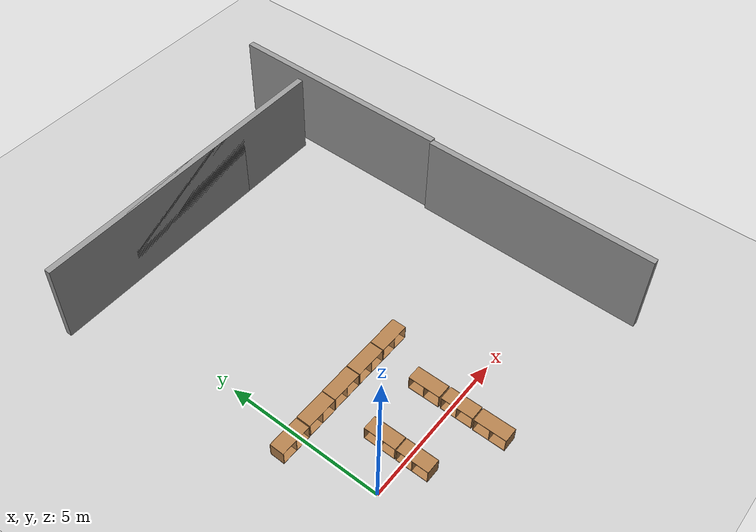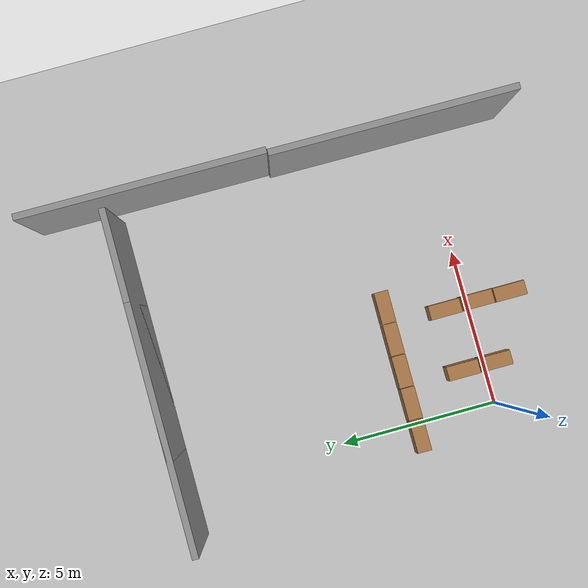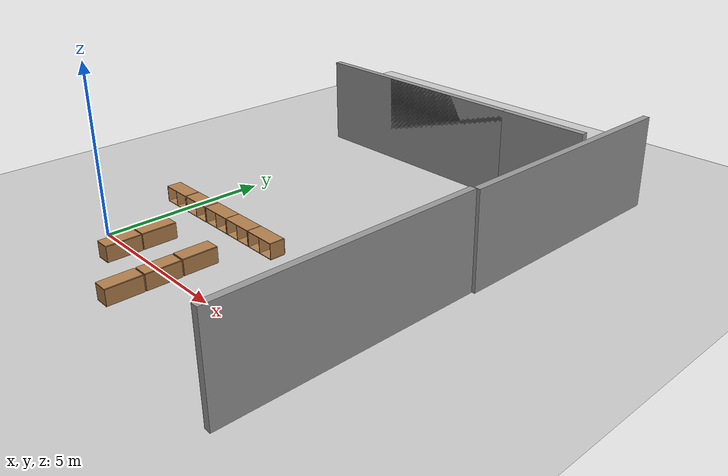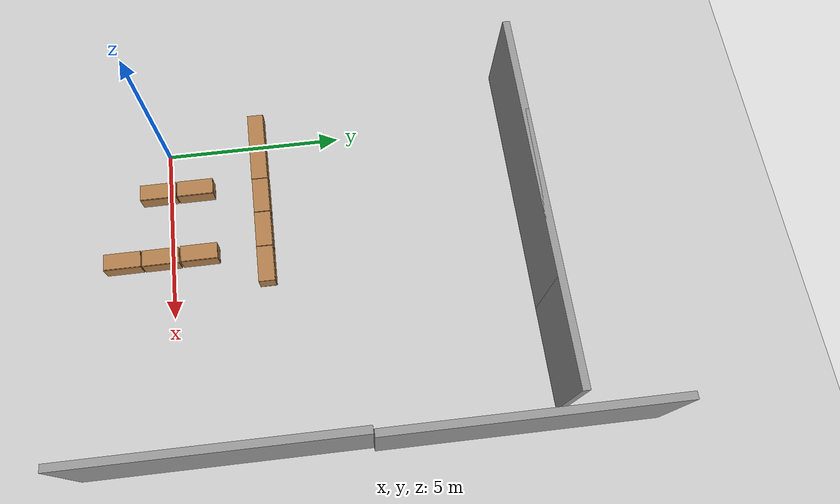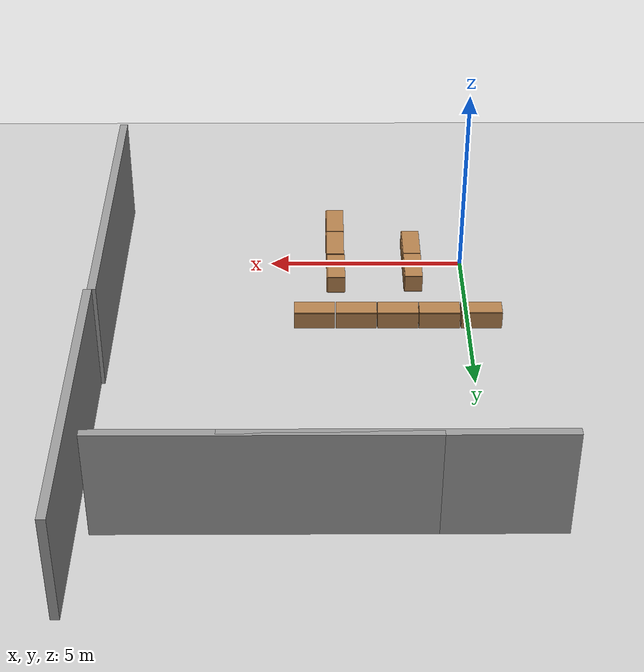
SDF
<sdf version="1.6">
 <world name="default">
  <model name="ground_plane">
   <static>1</static>
   <link name="link">
    <collision name="collision">
     <geometry><plane><normal>0 0 1</normal><size>100 100</size></plane></geometry>
     <surface><friction><ode><mu>100</mu><mu2>50</mu2></ode></friction></surface>
    </collision>
    <visual name="visual">
     <cast_shadows>0</cast_shadows>
     <geometry><plane><normal>0 0 1</normal><size>100 100</size></plane></geometry>
     <material>
      <script><uri>file://media/materials/scripts/gazebo.material</uri><name>Gazebo/Grey</name></script>
     </material>
    </visual>
   </link>
  </model>
  <model name="grey_wall1_clone_3">
   <pose>2.15 10 0 0 -0 0</pose>
   <static>1</static>
   <link name="grey_wall::link">
    <pose>0 0 1.4 0 -0 0</pose>
    <collision name="collision"><geometry><box><size>7.5 0.2 2.8</size></box></geometry></collision>
    <visual name="visual">
     <cast_shadows>0</cast_shadows>
     <geometry><box><size>7.5 0.2 2.8</size></box></geometry>
     <material>
      <script>
       <uri>model://grey_wall/materials/scripts</uri>
       <uri>model://grey_wall/materials/textures</uri>
       <name>vrc/grey_wall</name>
      </script>
     </material>
    </visual>
   </link>
  </model>
  <model name="grey_wall1_clone_4">
   <pose>4.95 10 0 0 -0 0</pose>
   <static>1</static>
   <link name="grey_wall::link">
    <pose>0 0 1.4 0 -0 0</pose>
    <collision name="collision"><geometry><box><size>7.5 0.2 2.8</size></box></geometry></collision>
    <visual name="visual">
     <cast_shadows>0</cast_shadows>
     <geometry><box><size>7.5 0.2 2.8</size></box></geometry>
     <material>
      <script>
       <uri>model://grey_wall/materials/scripts</uri>
       <uri>model://grey_wall/materials/textures</uri>
       <name>vrc/grey_wall</name>
      </script>
     </material>
    </visual>
   </link>
  </model>
  <model name="grey_wall_clone">
   <static>1</static>
   <link name="link">
    <pose>0 0 1.4 0 -0 0</pose>
    <collision name="collision"><geometry><box><size>7.5 0.2 2.8</size></box></geometry></collision>
    <visual name="visual">
     <cast_shadows>0</cast_shadows>
     <geometry><box><size>7.5 0.2 2.8</size></box></geometry>
     <material>
      <script>
       <uri>model://grey_wall/materials/scripts</uri>
       <uri>model://grey_wall/materials/textures</uri>
       <name>vrc/grey_wall</name>
      </script>
     </material>
    </visual>
   </link>
   <pose>8.95683 1.2518 0 0 -0 1.5647</pose>
  </model>
  <model name="grey_wall_clone_clone">
   <static>1</static>
   <link name="link">
    <pose>0 0 1.4 0 -0 0</pose>
    <collision name="collision"><geometry><box><size>7.5 0.2 2.8</size></box></geometry></collision>
    <visual name="visual">
     <cast_shadows>0</cast_shadows>
     <geometry><box><size>7.5 0.2 2.8</size></box></geometry>
     <material>
      <script>
       <uri>model://grey_wall/materials/scripts</uri>
       <uri>model://grey_wall/materials/textures</uri>
       <name>vrc/grey_wall</name>
      </script>
     </material>
    </visual>
   </link>
   <pose>9.08981 8.7681 0 0 -0 1.5647</pose>
  </model>
  <model name="cabinet">
   <static>1</static>
   <link name="cabinet_bottom_plate">
    <inertial>
     <pose>0 0 -1 0 -0 0</pose>
     <inertia><ixx>2.05</ixx><ixy>0</ixy><ixz>0</ixz><iyy>2.05</iyy><iyz>0</iyz><izz>2.05</izz></inertia>
     <mass>25</mass>
    </inertial>
    <collision name="cabinet_bottom_plate_geom">
     <pose>0 0 0.01 0 -0 0</pose>
     <geometry><box><size>0.45 0.45 0.02</size></box></geometry>
    </collision>
    <visual name="cabinet_bottom_plate_geom_visual">
     <pose>0 0 0.01 0 -0 0</pose>
     <geometry><box><size>0.45 0.45 0.02</size></box></geometry>
     <material>
      <script><uri>file://media/materials/scripts/gazebo.material</uri><name>Gazebo/Wood</name></script>
     </material>
    </visual>
    <collision name="cabinet_bottom_plate_geom_cabinet_back_plate">
     <pose>0.235 0 0.51 0 -0 0</pose>
     <geometry><box><size>0.02 0.45 1.02</size></box></geometry>
    </collision>
    <visual name="cabinet_bottom_plate_geom_cabinet_back_plate_visual">
     <pose>0.235 0 0.51 0 -0 0</pose>
     <geometry><box><size>0.02 0.45 1.02</size></box></geometry>
     <material>
      <script><uri>file://media/materials/scripts/gazebo.material</uri><name>Gazebo/Wood</name></script>
     </material>
    </visual>
    <collision name="cabinet_bottom_plate_geom_cabinet_left_plate">
     <pose>0 0.235 0.51 0 -0 0</pose>
     <geometry><box><size>0.45 0.02 1.02</size></box></geometry>
    </collision>
    <visual name="cabinet_bottom_plate_geom_cabinet_left_plate_visual">
     <pose>0 0.235 0.51 0 -0 0</pose>
     <geometry><box><size>0.45 0.02 1.02</size></box></geometry>
     <material>
      <script><uri>file://media/materials/scripts/gazebo.material</uri><name>Gazebo/Wood</name></script>
     </material>
    </visual>
    <collision name="cabinet_bottom_plate_geom_cabinet_middle_plate">
     <pose>0 0 0.51 0 -0 0</pose>
     <geometry><box><size>0.45 0.45 0.02</size></box></geometry>
    </collision>
    <visual name="cabinet_bottom_plate_geom_cabinet_middle_plate_visual">
     <pose>0 0 0.51 0 -0 0</pose>
     <geometry><box><size>0.45 0.45 0.02</size></box></geometry>
     <material>
      <script><uri>file://media/materials/scripts/gazebo.material</uri><name>Gazebo/Wood</name></script>
     </material>
    </visual>
    <collision name="cabinet_bottom_plate_geom_cabinet_right_plate">
     <pose>0 -0.235 0.51 0 -0 0</pose>
     <geometry><box><size>0.45 0.02 1.02</size></box></geometry>
    </collision>
    <visual name="cabinet_bottom_plate_geom_cabinet_right_plate_visual">
     <pose>0 -0.235 0.51 0 -0 0</pose>
     <geometry><box><size>0.45 0.02 1.02</size></box></geometry>
     <material>
      <script><uri>file://media/materials/scripts/gazebo.material</uri><name>Gazebo/Wood</name></script>
     </material>
    </visual>
    <collision name="cabinet_bottom_plate_geom_cabinet_top_plate">
     <pose>0 0 1.01 0 -0 0</pose>
     <geometry><box><size>0.45 0.45 0.02</size></box></geometry>
    </collision>
    <visual name="cabinet_bottom_plate_geom_cabinet_top_plate_visual">
     <pose>0 0 1.01 0 -0 0</pose>
     <geometry><box><size>0.45 0.45 0.02</size></box></geometry>
     <material>
      <script><uri>file://media/materials/scripts/gazebo.material</uri><name>Gazebo/Wood</name></script>
     </material>
    </visual>
   </link>
   <pose>3.29168 0.29942 0.264462 -1.57506 0 0</pose>
  </model>
  <model name="cabinet_clone">
   <static>1</static>
   <link name="cabinet_bottom_plate">
    <inertial>
     <pose>0 0 -1 0 -0 0</pose>
     <inertia><ixx>2.05</ixx><ixy>0</ixy><ixz>0</ixz><iyy>2.05</iyy><iyz>0</iyz><izz>2.05</izz></inertia>
     <mass>25</mass>
    </inertial>
    <collision name="cabinet_bottom_plate_geom">
     <pose>0 0 0.01 0 -0 0</pose>
     <geometry><box><size>0.45 0.45 0.02</size></box></geometry>
    </collision>
    <visual name="cabinet_bottom_plate_geom_visual">
     <pose>0 0 0.01 0 -0 0</pose>
     <geometry><box><size>0.45 0.45 0.02</size></box></geometry>
     <material>
      <script><uri>file://media/materials/scripts/gazebo.material</uri><name>Gazebo/Wood</name></script>
     </material>
    </visual>
    <collision name="cabinet_bottom_plate_geom_cabinet_back_plate">
     <pose>0.235 0 0.51 0 -0 0</pose>
     <geometry><box><size>0.02 0.45 1.02</size></box></geometry>
    </collision>
    <visual name="cabinet_bottom_plate_geom_cabinet_back_plate_visual">
     <pose>0.235 0 0.51 0 -0 0</pose>
     <geometry><box><size>0.02 0.45 1.02</size></box></geometry>
     <material>
      <script><uri>file://media/materials/scripts/gazebo.material</uri><name>Gazebo/Wood</name></script>
     </material>
    </visual>
    <collision name="cabinet_bottom_plate_geom_cabinet_left_plate">
     <pose>0 0.235 0.51 0 -0 0</pose>
     <geometry><box><size>0.45 0.02 1.02</size></box></geometry>
    </collision>
    <visual name="cabinet_bottom_plate_geom_cabinet_left_plate_visual">
     <pose>0 0.235 0.51 0 -0 0</pose>
     <geometry><box><size>0.45 0.02 1.02</size></box></geometry>
     <material>
      <script><uri>file://media/materials/scripts/gazebo.material</uri><name>Gazebo/Wood</name></script>
     </material>
    </visual>
    <collision name="cabinet_bottom_plate_geom_cabinet_middle_plate">
     <pose>0 0 0.51 0 -0 0</pose>
     <geometry><box><size>0.45 0.45 0.02</size></box></geometry>
    </collision>
    <visual name="cabinet_bottom_plate_geom_cabinet_middle_plate_visual">
     <pose>0 0 0.51 0 -0 0</pose>
     <geometry><box><size>0.45 0.45 0.02</size></box></geometry>
     <material>
      <script><uri>file://media/materials/scripts/gazebo.material</uri><name>Gazebo/Wood</name></script>
     </material>
    </visual>
    <collision name="cabinet_bottom_plate_geom_cabinet_right_plate">
     <pose>0 -0.235 0.51 0 -0 0</pose>
     <geometry><box><size>0.45 0.02 1.02</size></box></geometry>
    </collision>
    <visual name="cabinet_bottom_plate_geom_cabinet_right_plate_visual">
     <pose>0 -0.235 0.51 0 -0 0</pose>
     <geometry><box><size>0.45 0.02 1.02</size></box></geometry>
     <material>
      <script><uri>file://media/materials/scripts/gazebo.material</uri><name>Gazebo/Wood</name></script>
     </material>
    </visual>
    <collision name="cabinet_bottom_plate_geom_cabinet_top_plate">
     <pose>0 0 1.01 0 -0 0</pose>
     <geometry><box><size>0.45 0.45 0.02</size></box></geometry>
    </collision>
    <visual name="cabinet_bottom_plate_geom_cabinet_top_plate_visual">
     <pose>0 0 1.01 0 -0 0</pose>
     <geometry><box><size>0.45 0.45 0.02</size></box></geometry>
     <material>
      <script><uri>file://media/materials/scripts/gazebo.material</uri><name>Gazebo/Wood</name></script>
     </material>
    </visual>
   </link>
   <pose>3.30353 -0.766856 0.264462 -1.57506 0 0</pose>
  </model>
  <model name="cabinet_clone_0">
   <static>1</static>
   <link name="cabinet_bottom_plate">
    <inertial>
     <pose>0 0 -1 0 -0 0</pose>
     <inertia><ixx>2.05</ixx><ixy>0</ixy><ixz>0</ixz><iyy>2.05</iyy><iyz>0</iyz><izz>2.05</izz></inertia>
     <mass>25</mass>
    </inertial>
    <collision name="cabinet_bottom_plate_geom">
     <pose>0 0 0.01 0 -0 0</pose>
     <geometry><box><size>0.45 0.45 0.02</size></box></geometry>
    </collision>
    <visual name="cabinet_bottom_plate_geom_visual">
     <pose>0 0 0.01 0 -0 0</pose>
     <geometry><box><size>0.45 0.45 0.02</size></box></geometry>
     <material>
      <script><uri>file://media/materials/scripts/gazebo.material</uri><name>Gazebo/Wood</name></script>
     </material>
    </visual>
    <collision name="cabinet_bottom_plate_geom_cabinet_back_plate">
     <pose>0.235 0 0.51 0 -0 0</pose>
     <geometry><box><size>0.02 0.45 1.02</size></box></geometry>
    </collision>
    <visual name="cabinet_bottom_plate_geom_cabinet_back_plate_visual">
     <pose>0.235 0 0.51 0 -0 0</pose>
     <geometry><box><size>0.02 0.45 1.02</size></box></geometry>
     <material>
      <script><uri>file://media/materials/scripts/gazebo.material</uri><name>Gazebo/Wood</name></script>
     </material>
    </visual>
    <collision name="cabinet_bottom_plate_geom_cabinet_left_plate">
     <pose>0 0.235 0.51 0 -0 0</pose>
     <geometry><box><size>0.45 0.02 1.02</size></box></geometry>
    </collision>
    <visual name="cabinet_bottom_plate_geom_cabinet_left_plate_visual">
     <pose>0 0.235 0.51 0 -0 0</pose>
     <geometry><box><size>0.45 0.02 1.02</size></box></geometry>
     <material>
      <script><uri>file://media/materials/scripts/gazebo.material</uri><name>Gazebo/Wood</name></script>
     </material>
    </visual>
    <collision name="cabinet_bottom_plate_geom_cabinet_middle_plate">
     <pose>0 0 0.51 0 -0 0</pose>
     <geometry><box><size>0.45 0.45 0.02</size></box></geometry>
    </collision>
    <visual name="cabinet_bottom_plate_geom_cabinet_middle_plate_visual">
     <pose>0 0 0.51 0 -0 0</pose>
     <geometry><box><size>0.45 0.45 0.02</size></box></geometry>
     <material>
      <script><uri>file://media/materials/scripts/gazebo.material</uri><name>Gazebo/Wood</name></script>
     </material>
    </visual>
    <collision name="cabinet_bottom_plate_geom_cabinet_right_plate">
     <pose>0 -0.235 0.51 0 -0 0</pose>
     <geometry><box><size>0.45 0.02 1.02</size></box></geometry>
    </collision>
    <visual name="cabinet_bottom_plate_geom_cabinet_right_plate_visual">
     <pose>0 -0.235 0.51 0 -0 0</pose>
     <geometry><box><size>0.45 0.02 1.02</size></box></geometry>
     <material>
      <script><uri>file://media/materials/scripts/gazebo.material</uri><name>Gazebo/Wood</name></script>
     </material>
    </visual>
    <collision name="cabinet_bottom_plate_geom_cabinet_top_plate">
     <pose>0 0 1.01 0 -0 0</pose>
     <geometry><box><size>0.45 0.45 0.02</size></box></geometry>
    </collision>
    <visual name="cabinet_bottom_plate_geom_cabinet_top_plate_visual">
     <pose>0 0 1.01 0 -0 0</pose>
     <geometry><box><size>0.45 0.45 0.02</size></box></geometry>
     <material>
      <script><uri>file://media/materials/scripts/gazebo.material</uri><name>Gazebo/Wood</name></script>
     </material>
    </visual>
   </link>
   <pose>3.2968 -1.82483 0.264462 -1.57506 0 0</pose>
  </model>
  <model name="cabinet_clone_1">
   <static>1</static>
   <link name="cabinet_bottom_plate">
    <inertial>
     <pose>0 0 -1 0 -0 0</pose>
     <inertia><ixx>2.05</ixx><ixy>0</ixy><ixz>0</ixz><iyy>2.05</iyy><iyz>0</iyz><izz>2.05</izz></inertia>
     <mass>25</mass>
    </inertial>
    <collision name="cabinet_bottom_plate_geom">
     <pose>0 0 0.01 0 -0 0</pose>
     <geometry><box><size>0.45 0.45 0.02</size></box></geometry>
    </collision>
    <visual name="cabinet_bottom_plate_geom_visual">
     <pose>0 0 0.01 0 -0 0</pose>
     <geometry><box><size>0.45 0.45 0.02</size></box></geometry>
     <material>
      <script><uri>file://media/materials/scripts/gazebo.material</uri><name>Gazebo/Wood</name></script>
     </material>
    </visual>
    <collision name="cabinet_bottom_plate_geom_cabinet_back_plate">
     <pose>0.235 0 0.51 0 -0 0</pose>
     <geometry><box><size>0.02 0.45 1.02</size></box></geometry>
    </collision>
    <visual name="cabinet_bottom_plate_geom_cabinet_back_plate_visual">
     <pose>0.235 0 0.51 0 -0 0</pose>
     <geometry><box><size>0.02 0.45 1.02</size></box></geometry>
     <material>
      <script><uri>file://media/materials/scripts/gazebo.material</uri><name>Gazebo/Wood</name></script>
     </material>
    </visual>
    <collision name="cabinet_bottom_plate_geom_cabinet_left_plate">
     <pose>0 0.235 0.51 0 -0 0</pose>
     <geometry><box><size>0.45 0.02 1.02</size></box></geometry>
    </collision>
    <visual name="cabinet_bottom_plate_geom_cabinet_left_plate_visual">
     <pose>0 0.235 0.51 0 -0 0</pose>
     <geometry><box><size>0.45 0.02 1.02</size></box></geometry>
     <material>
      <script><uri>file://media/materials/scripts/gazebo.material</uri><name>Gazebo/Wood</name></script>
     </material>
    </visual>
    <collision name="cabinet_bottom_plate_geom_cabinet_middle_plate">
     <pose>0 0 0.51 0 -0 0</pose>
     <geometry><box><size>0.45 0.45 0.02</size></box></geometry>
    </collision>
    <visual name="cabinet_bottom_plate_geom_cabinet_middle_plate_visual">
     <pose>0 0 0.51 0 -0 0</pose>
     <geometry><box><size>0.45 0.45 0.02</size></box></geometry>
     <material>
      <script><uri>file://media/materials/scripts/gazebo.material</uri><name>Gazebo/Wood</name></script>
     </material>
    </visual>
    <collision name="cabinet_bottom_plate_geom_cabinet_right_plate">
     <pose>0 -0.235 0.51 0 -0 0</pose>
     <geometry><box><size>0.45 0.02 1.02</size></box></geometry>
    </collision>
    <visual name="cabinet_bottom_plate_geom_cabinet_right_plate_visual">
     <pose>0 -0.235 0.51 0 -0 0</pose>
     <geometry><box><size>0.45 0.02 1.02</size></box></geometry>
     <material>
      <script><uri>file://media/materials/scripts/gazebo.material</uri><name>Gazebo/Wood</name></script>
     </material>
    </visual>
    <collision name="cabinet_bottom_plate_geom_cabinet_top_plate">
     <pose>0 0 1.01 0 -0 0</pose>
     <geometry><box><size>0.45 0.45 0.02</size></box></geometry>
    </collision>
    <visual name="cabinet_bottom_plate_geom_cabinet_top_plate_visual">
     <pose>0 0 1.01 0 -0 0</pose>
     <geometry><box><size>0.45 0.45 0.02</size></box></geometry>
     <material>
      <script><uri>file://media/materials/scripts/gazebo.material</uri><name>Gazebo/Wood</name></script>
     </material>
    </visual>
   </link>
   <pose>1.29788 0.265843 0.264462 -1.57506 0 0</pose>
  </model>
  <model name="cabinet_clone_2">
   <static>1</static>
   <link name="cabinet_bottom_plate">
    <inertial>
     <pose>0 0 -1 0 -0 0</pose>
     <inertia><ixx>2.05</ixx><ixy>0</ixy><ixz>0</ixz><iyy>2.05</iyy><iyz>0</iyz><izz>2.05</izz></inertia>
     <mass>25</mass>
    </inertial>
    <collision name="cabinet_bottom_plate_geom">
     <pose>0 0 0.01 0 -0 0</pose>
     <geometry><box><size>0.45 0.45 0.02</size></box></geometry>
    </collision>
    <visual name="cabinet_bottom_plate_geom_visual">
     <pose>0 0 0.01 0 -0 0</pose>
     <geometry><box><size>0.45 0.45 0.02</size></box></geometry>
     <material>
      <script><uri>file://media/materials/scripts/gazebo.material</uri><name>Gazebo/Wood</name></script>
     </material>
    </visual>
    <collision name="cabinet_bottom_plate_geom_cabinet_back_plate">
     <pose>0.235 0 0.51 0 -0 0</pose>
     <geometry><box><size>0.02 0.45 1.02</size></box></geometry>
    </collision>
    <visual name="cabinet_bottom_plate_geom_cabinet_back_plate_visual">
     <pose>0.235 0 0.51 0 -0 0</pose>
     <geometry><box><size>0.02 0.45 1.02</size></box></geometry>
     <material>
      <script><uri>file://media/materials/scripts/gazebo.material</uri><name>Gazebo/Wood</name></script>
     </material>
    </visual>
    <collision name="cabinet_bottom_plate_geom_cabinet_left_plate">
     <pose>0 0.235 0.51 0 -0 0</pose>
     <geometry><box><size>0.45 0.02 1.02</size></box></geometry>
    </collision>
    <visual name="cabinet_bottom_plate_geom_cabinet_left_plate_visual">
     <pose>0 0.235 0.51 0 -0 0</pose>
     <geometry><box><size>0.45 0.02 1.02</size></box></geometry>
     <material>
      <script><uri>file://media/materials/scripts/gazebo.material</uri><name>Gazebo/Wood</name></script>
     </material>
    </visual>
    <collision name="cabinet_bottom_plate_geom_cabinet_middle_plate">
     <pose>0 0 0.51 0 -0 0</pose>
     <geometry><box><size>0.45 0.45 0.02</size></box></geometry>
    </collision>
    <visual name="cabinet_bottom_plate_geom_cabinet_middle_plate_visual">
     <pose>0 0 0.51 0 -0 0</pose>
     <geometry><box><size>0.45 0.45 0.02</size></box></geometry>
     <material>
      <script><uri>file://media/materials/scripts/gazebo.material</uri><name>Gazebo/Wood</name></script>
     </material>
    </visual>
    <collision name="cabinet_bottom_plate_geom_cabinet_right_plate">
     <pose>0 -0.235 0.51 0 -0 0</pose>
     <geometry><box><size>0.45 0.02 1.02</size></box></geometry>
    </collision>
    <visual name="cabinet_bottom_plate_geom_cabinet_right_plate_visual">
     <pose>0 -0.235 0.51 0 -0 0</pose>
     <geometry><box><size>0.45 0.02 1.02</size></box></geometry>
     <material>
      <script><uri>file://media/materials/scripts/gazebo.material</uri><name>Gazebo/Wood</name></script>
     </material>
    </visual>
    <collision name="cabinet_bottom_plate_geom_cabinet_top_plate">
     <pose>0 0 1.01 0 -0 0</pose>
     <geometry><box><size>0.45 0.45 0.02</size></box></geometry>
    </collision>
    <visual name="cabinet_bottom_plate_geom_cabinet_top_plate_visual">
     <pose>0 0 1.01 0 -0 0</pose>
     <geometry><box><size>0.45 0.45 0.02</size></box></geometry>
     <material>
      <script><uri>file://media/materials/scripts/gazebo.material</uri><name>Gazebo/Wood</name></script>
     </material>
    </visual>
   </link>
   <pose>1.29879 -0.786258 0.264462 -1.57506 0 0</pose>
  </model>
  <model name="cabinet_clone_10_clone_9">
   <static>1</static>
   <link name="cabinet_bottom_plate">
    <inertial>
     <pose>0 0 -1 0 -0 0</pose>
     <inertia><ixx>2.05</ixx><ixy>0</ixy><ixz>0</ixz><iyy>2.05</iyy><iyz>0</iyz><izz>2.05</izz></inertia>
     <mass>25</mass>
    </inertial>
    <collision name="cabinet_bottom_plate_geom">
     <pose>0 0 0.01 0 -0 0</pose>
     <geometry><box><size>0.45 0.45 0.02</size></box></geometry>
    </collision>
    <visual name="cabinet_bottom_plate_geom_visual">
     <pose>0 0 0.01 0 -0 0</pose>
     <geometry><box><size>0.45 0.45 0.02</size></box></geometry>
     <material>
      <script><uri>file://media/materials/scripts/gazebo.material</uri><name>Gazebo/Wood</name></script>
     </material>
    </visual>
    <collision name="cabinet_bottom_plate_geom_cabinet_back_plate">
     <pose>0.235 0 0.51 0 -0 0</pose>
     <geometry><box><size>0.02 0.45 1.02</size></box></geometry>
    </collision>
    <visual name="cabinet_bottom_plate_geom_cabinet_back_plate_visual">
     <pose>0.235 0 0.51 0 -0 0</pose>
     <geometry><box><size>0.02 0.45 1.02</size></box></geometry>
     <material>
      <script><uri>file://media/materials/scripts/gazebo.material</uri><name>Gazebo/Wood</name></script>
     </material>
    </visual>
    <collision name="cabinet_bottom_plate_geom_cabinet_left_plate">
     <pose>0 0.235 0.51 0 -0 0</pose>
     <geometry><box><size>0.45 0.02 1.02</size></box></geometry>
    </collision>
    <visual name="cabinet_bottom_plate_geom_cabinet_left_plate_visual">
     <pose>0 0.235 0.51 0 -0 0</pose>
     <geometry><box><size>0.45 0.02 1.02</size></box></geometry>
     <material>
      <script><uri>file://media/materials/scripts/gazebo.material</uri><name>Gazebo/Wood</name></script>
     </material>
    </visual>
    <collision name="cabinet_bottom_plate_geom_cabinet_middle_plate">
     <pose>0 0 0.51 0 -0 0</pose>
     <geometry><box><size>0.45 0.45 0.02</size></box></geometry>
    </collision>
    <visual name="cabinet_bottom_plate_geom_cabinet_middle_plate_visual">
     <pose>0 0 0.51 0 -0 0</pose>
     <geometry><box><size>0.45 0.45 0.02</size></box></geometry>
     <material>
      <script><uri>file://media/materials/scripts/gazebo.material</uri><name>Gazebo/Wood</name></script>
     </material>
    </visual>
    <collision name="cabinet_bottom_plate_geom_cabinet_right_plate">
     <pose>0 -0.235 0.51 0 -0 0</pose>
     <geometry><box><size>0.45 0.02 1.02</size></box></geometry>
    </collision>
    <visual name="cabinet_bottom_plate_geom_cabinet_right_plate_visual">
     <pose>0 -0.235 0.51 0 -0 0</pose>
     <geometry><box><size>0.45 0.02 1.02</size></box></geometry>
     <material>
      <script><uri>file://media/materials/scripts/gazebo.material</uri><name>Gazebo/Wood</name></script>
     </material>
    </visual>
    <collision name="cabinet_bottom_plate_geom_cabinet_top_plate">
     <pose>0 0 1.01 0 -0 0</pose>
     <geometry><box><size>0.45 0.45 0.02</size></box></geometry>
    </collision>
    <visual name="cabinet_bottom_plate_geom_cabinet_top_plate_visual">
     <pose>0 0 1.01 0 -0 0</pose>
     <geometry><box><size>0.45 0.45 0.02</size></box></geometry>
     <material>
      <script><uri>file://media/materials/scripts/gazebo.material</uri><name>Gazebo/Wood</name></script>
     </material>
    </visual>
   </link>
   <pose>0.184905 2.63138 0.264462 -1.57082 0.004264 1.56552</pose>
  </model>
  <model name="cabinet_clone_10_clone_10">
   <static>1</static>
   <link name="cabinet_bottom_plate">
    <inertial>
     <pose>0 0 -1 0 -0 0</pose>
     <inertia><ixx>2.05</ixx><ixy>0</ixy><ixz>0</ixz><iyy>2.05</iyy><iyz>0</iyz><izz>2.05</izz></inertia>
     <mass>25</mass>
    </inertial>
    <collision name="cabinet_bottom_plate_geom">
     <pose>0 0 0.01 0 -0 0</pose>
     <geometry><box><size>0.45 0.45 0.02</size></box></geometry>
    </collision>
    <visual name="cabinet_bottom_plate_geom_visual">
     <pose>0 0 0.01 0 -0 0</pose>
     <geometry><box><size>0.45 0.45 0.02</size></box></geometry>
     <material>
      <script><uri>file://media/materials/scripts/gazebo.material</uri><name>Gazebo/Wood</name></script>
     </material>
    </visual>
    <collision name="cabinet_bottom_plate_geom_cabinet_back_plate">
     <pose>0.235 0 0.51 0 -0 0</pose>
     <geometry><box><size>0.02 0.45 1.02</size></box></geometry>
    </collision>
    <visual name="cabinet_bottom_plate_geom_cabinet_back_plate_visual">
     <pose>0.235 0 0.51 0 -0 0</pose>
     <geometry><box><size>0.02 0.45 1.02</size></box></geometry>
     <material>
      <script><uri>file://media/materials/scripts/gazebo.material</uri><name>Gazebo/Wood</name></script>
     </material>
    </visual>
    <collision name="cabinet_bottom_plate_geom_cabinet_left_plate">
     <pose>0 0.235 0.51 0 -0 0</pose>
     <geometry><box><size>0.45 0.02 1.02</size></box></geometry>
    </collision>
    <visual name="cabinet_bottom_plate_geom_cabinet_left_plate_visual">
     <pose>0 0.235 0.51 0 -0 0</pose>
     <geometry><box><size>0.45 0.02 1.02</size></box></geometry>
     <material>
      <script><uri>file://media/materials/scripts/gazebo.material</uri><name>Gazebo/Wood</name></script>
     </material>
    </visual>
    <collision name="cabinet_bottom_plate_geom_cabinet_middle_plate">
     <pose>0 0 0.51 0 -0 0</pose>
     <geometry><box><size>0.45 0.45 0.02</size></box></geometry>
    </collision>
    <visual name="cabinet_bottom_plate_geom_cabinet_middle_plate_visual">
     <pose>0 0 0.51 0 -0 0</pose>
     <geometry><box><size>0.45 0.45 0.02</size></box></geometry>
     <material>
      <script><uri>file://media/materials/scripts/gazebo.material</uri><name>Gazebo/Wood</name></script>
     </material>
    </visual>
    <collision name="cabinet_bottom_plate_geom_cabinet_right_plate">
     <pose>0 -0.235 0.51 0 -0 0</pose>
     <geometry><box><size>0.45 0.02 1.02</size></box></geometry>
    </collision>
    <visual name="cabinet_bottom_plate_geom_cabinet_right_plate_visual">
     <pose>0 -0.235 0.51 0 -0 0</pose>
     <geometry><box><size>0.45 0.02 1.02</size></box></geometry>
     <material>
      <script><uri>file://media/materials/scripts/gazebo.material</uri><name>Gazebo/Wood</name></script>
     </material>
    </visual>
    <collision name="cabinet_bottom_plate_geom_cabinet_top_plate">
     <pose>0 0 1.01 0 -0 0</pose>
     <geometry><box><size>0.45 0.45 0.02</size></box></geometry>
    </collision>
    <visual name="cabinet_bottom_plate_geom_cabinet_top_plate_visual">
     <pose>0 0 1.01 0 -0 0</pose>
     <geometry><box><size>0.45 0.45 0.02</size></box></geometry>
     <material>
      <script><uri>file://media/materials/scripts/gazebo.material</uri><name>Gazebo/Wood</name></script>
     </material>
    </visual>
   </link>
   <pose>1.24001 2.63178 0.264462 -1.57082 0.004264 1.56552</pose>
  </model>
  <model name="cabinet_clone_10_clone_11">
   <static>1</static>
   <link name="cabinet_bottom_plate">
    <inertial>
     <pose>0 0 -1 0 -0 0</pose>
     <inertia><ixx>2.05</ixx><ixy>0</ixy><ixz>0</ixz><iyy>2.05</iyy><iyz>0</iyz><izz>2.05</izz></inertia>
     <mass>25</mass>
    </inertial>
    <collision name="cabinet_bottom_plate_geom">
     <pose>0 0 0.01 0 -0 0</pose>
     <geometry><box><size>0.45 0.45 0.02</size></box></geometry>
    </collision>
    <visual name="cabinet_bottom_plate_geom_visual">
     <pose>0 0 0.01 0 -0 0</pose>
     <geometry><box><size>0.45 0.45 0.02</size></box></geometry>
     <material>
      <script><uri>file://media/materials/scripts/gazebo.material</uri><name>Gazebo/Wood</name></script>
     </material>
    </visual>
    <collision name="cabinet_bottom_plate_geom_cabinet_back_plate">
     <pose>0.235 0 0.51 0 -0 0</pose>
     <geometry><box><size>0.02 0.45 1.02</size></box></geometry>
    </collision>
    <visual name="cabinet_bottom_plate_geom_cabinet_back_plate_visual">
     <pose>0.235 0 0.51 0 -0 0</pose>
     <geometry><box><size>0.02 0.45 1.02</size></box></geometry>
     <material>
      <script><uri>file://media/materials/scripts/gazebo.material</uri><name>Gazebo/Wood</name></script>
     </material>
    </visual>
    <collision name="cabinet_bottom_plate_geom_cabinet_left_plate">
     <pose>0 0.235 0.51 0 -0 0</pose>
     <geometry><box><size>0.45 0.02 1.02</size></box></geometry>
    </collision>
    <visual name="cabinet_bottom_plate_geom_cabinet_left_plate_visual">
     <pose>0 0.235 0.51 0 -0 0</pose>
     <geometry><box><size>0.45 0.02 1.02</size></box></geometry>
     <material>
      <script><uri>file://media/materials/scripts/gazebo.material</uri><name>Gazebo/Wood</name></script>
     </material>
    </visual>
    <collision name="cabinet_bottom_plate_geom_cabinet_middle_plate">
     <pose>0 0 0.51 0 -0 0</pose>
     <geometry><box><size>0.45 0.45 0.02</size></box></geometry>
    </collision>
    <visual name="cabinet_bottom_plate_geom_cabinet_middle_plate_visual">
     <pose>0 0 0.51 0 -0 0</pose>
     <geometry><box><size>0.45 0.45 0.02</size></box></geometry>
     <material>
      <script><uri>file://media/materials/scripts/gazebo.material</uri><name>Gazebo/Wood</name></script>
     </material>
    </visual>
    <collision name="cabinet_bottom_plate_geom_cabinet_right_plate">
     <pose>0 -0.235 0.51 0 -0 0</pose>
     <geometry><box><size>0.45 0.02 1.02</size></box></geometry>
    </collision>
    <visual name="cabinet_bottom_plate_geom_cabinet_right_plate_visual">
     <pose>0 -0.235 0.51 0 -0 0</pose>
     <geometry><box><size>0.45 0.02 1.02</size></box></geometry>
     <material>
      <script><uri>file://media/materials/scripts/gazebo.material</uri><name>Gazebo/Wood</name></script>
     </material>
    </visual>
    <collision name="cabinet_bottom_plate_geom_cabinet_top_plate">
     <pose>0 0 1.01 0 -0 0</pose>
     <geometry><box><size>0.45 0.45 0.02</size></box></geometry>
    </collision>
    <visual name="cabinet_bottom_plate_geom_cabinet_top_plate_visual">
     <pose>0 0 1.01 0 -0 0</pose>
     <geometry><box><size>0.45 0.45 0.02</size></box></geometry>
     <material>
      <script><uri>file://media/materials/scripts/gazebo.material</uri><name>Gazebo/Wood</name></script>
     </material>
    </visual>
   </link>
   <pose>2.27926 2.63427 0.264462 -1.57082 0.004264 1.56552</pose>
  </model>
  <model name="cabinet_clone_10_clone_12">
   <static>1</static>
   <link name="cabinet_bottom_plate">
    <inertial>
     <pose>0 0 -1 0 -0 0</pose>
     <inertia><ixx>2.05</ixx><ixy>0</ixy><ixz>0</ixz><iyy>2.05</iyy><iyz>0</iyz><izz>2.05</izz></inertia>
     <mass>25</mass>
    </inertial>
    <collision name="cabinet_bottom_plate_geom">
     <pose>0 0 0.01 0 -0 0</pose>
     <geometry><box><size>0.45 0.45 0.02</size></box></geometry>
    </collision>
    <visual name="cabinet_bottom_plate_geom_visual">
     <pose>0 0 0.01 0 -0 0</pose>
     <geometry><box><size>0.45 0.45 0.02</size></box></geometry>
     <material>
      <script><uri>file://media/materials/scripts/gazebo.material</uri><name>Gazebo/Wood</name></script>
     </material>
    </visual>
    <collision name="cabinet_bottom_plate_geom_cabinet_back_plate">
     <pose>0.235 0 0.51 0 -0 0</pose>
     <geometry><box><size>0.02 0.45 1.02</size></box></geometry>
    </collision>
    <visual name="cabinet_bottom_plate_geom_cabinet_back_plate_visual">
     <pose>0.235 0 0.51 0 -0 0</pose>
     <geometry><box><size>0.02 0.45 1.02</size></box></geometry>
     <material>
      <script><uri>file://media/materials/scripts/gazebo.material</uri><name>Gazebo/Wood</name></script>
     </material>
    </visual>
    <collision name="cabinet_bottom_plate_geom_cabinet_left_plate">
     <pose>0 0.235 0.51 0 -0 0</pose>
     <geometry><box><size>0.45 0.02 1.02</size></box></geometry>
    </collision>
    <visual name="cabinet_bottom_plate_geom_cabinet_left_plate_visual">
     <pose>0 0.235 0.51 0 -0 0</pose>
     <geometry><box><size>0.45 0.02 1.02</size></box></geometry>
     <material>
      <script><uri>file://media/materials/scripts/gazebo.material</uri><name>Gazebo/Wood</name></script>
     </material>
    </visual>
    <collision name="cabinet_bottom_plate_geom_cabinet_middle_plate">
     <pose>0 0 0.51 0 -0 0</pose>
     <geometry><box><size>0.45 0.45 0.02</size></box></geometry>
    </collision>
    <visual name="cabinet_bottom_plate_geom_cabinet_middle_plate_visual">
     <pose>0 0 0.51 0 -0 0</pose>
     <geometry><box><size>0.45 0.45 0.02</size></box></geometry>
     <material>
      <script><uri>file://media/materials/scripts/gazebo.material</uri><name>Gazebo/Wood</name></script>
     </material>
    </visual>
    <collision name="cabinet_bottom_plate_geom_cabinet_right_plate">
     <pose>0 -0.235 0.51 0 -0 0</pose>
     <geometry><box><size>0.45 0.02 1.02</size></box></geometry>
    </collision>
    <visual name="cabinet_bottom_plate_geom_cabinet_right_plate_visual">
     <pose>0 -0.235 0.51 0 -0 0</pose>
     <geometry><box><size>0.45 0.02 1.02</size></box></geometry>
     <material>
      <script><uri>file://media/materials/scripts/gazebo.material</uri><name>Gazebo/Wood</name></script>
     </material>
    </visual>
    <collision name="cabinet_bottom_plate_geom_cabinet_top_plate">
     <pose>0 0 1.01 0 -0 0</pose>
     <geometry><box><size>0.45 0.45 0.02</size></box></geometry>
    </collision>
    <visual name="cabinet_bottom_plate_geom_cabinet_top_plate_visual">
     <pose>0 0 1.01 0 -0 0</pose>
     <geometry><box><size>0.45 0.45 0.02</size></box></geometry>
     <material>
      <script><uri>file://media/materials/scripts/gazebo.material</uri><name>Gazebo/Wood</name></script>
     </material>
    </visual>
   </link>
   <pose>3.32288 2.62929 0.264462 -1.57082 0.004264 1.56552</pose>
  </model>
  <model name="cabinet_clone_10_clone_13">
   <static>1</static>
   <link name="cabinet_bottom_plate">
    <inertial>
     <pose>0 0 -1 0 -0 0</pose>
     <inertia><ixx>2.05</ixx><ixy>0</ixy><ixz>0</ixz><iyy>2.05</iyy><iyz>0</iyz><izz>2.05</izz></inertia>
     <mass>25</mass>
    </inertial>
    <collision name="cabinet_bottom_plate_geom">
     <pose>0 0 0.01 0 -0 0</pose>
     <geometry><box><size>0.45 0.45 0.02</size></box></geometry>
    </collision>
    <visual name="cabinet_bottom_plate_geom_visual">
     <pose>0 0 0.01 0 -0 0</pose>
     <geometry><box><size>0.45 0.45 0.02</size></box></geometry>
     <material>
      <script><uri>file://media/materials/scripts/gazebo.material</uri><name>Gazebo/Wood</name></script>
     </material>
    </visual>
    <collision name="cabinet_bottom_plate_geom_cabinet_back_plate">
     <pose>0.235 0 0.51 0 -0 0</pose>
     <geometry><box><size>0.02 0.45 1.02</size></box></geometry>
    </collision>
    <visual name="cabinet_bottom_plate_geom_cabinet_back_plate_visual">
     <pose>0.235 0 0.51 0 -0 0</pose>
     <geometry><box><size>0.02 0.45 1.02</size></box></geometry>
     <material>
      <script><uri>file://media/materials/scripts/gazebo.material</uri><name>Gazebo/Wood</name></script>
     </material>
    </visual>
    <collision name="cabinet_bottom_plate_geom_cabinet_left_plate">
     <pose>0 0.235 0.51 0 -0 0</pose>
     <geometry><box><size>0.45 0.02 1.02</size></box></geometry>
    </collision>
    <visual name="cabinet_bottom_plate_geom_cabinet_left_plate_visual">
     <pose>0 0.235 0.51 0 -0 0</pose>
     <geometry><box><size>0.45 0.02 1.02</size></box></geometry>
     <material>
      <script><uri>file://media/materials/scripts/gazebo.material</uri><name>Gazebo/Wood</name></script>
     </material>
    </visual>
    <collision name="cabinet_bottom_plate_geom_cabinet_middle_plate">
     <pose>0 0 0.51 0 -0 0</pose>
     <geometry><box><size>0.45 0.45 0.02</size></box></geometry>
    </collision>
    <visual name="cabinet_bottom_plate_geom_cabinet_middle_plate_visual">
     <pose>0 0 0.51 0 -0 0</pose>
     <geometry><box><size>0.45 0.45 0.02</size></box></geometry>
     <material>
      <script><uri>file://media/materials/scripts/gazebo.material</uri><name>Gazebo/Wood</name></script>
     </material>
    </visual>
    <collision name="cabinet_bottom_plate_geom_cabinet_right_plate">
     <pose>0 -0.235 0.51 0 -0 0</pose>
     <geometry><box><size>0.45 0.02 1.02</size></box></geometry>
    </collision>
    <visual name="cabinet_bottom_plate_geom_cabinet_right_plate_visual">
     <pose>0 -0.235 0.51 0 -0 0</pose>
     <geometry><box><size>0.45 0.02 1.02</size></box></geometry>
     <material>
      <script><uri>file://media/materials/scripts/gazebo.material</uri><name>Gazebo/Wood</name></script>
     </material>
    </visual>
    <collision name="cabinet_bottom_plate_geom_cabinet_top_plate">
     <pose>0 0 1.01 0 -0 0</pose>
     <geometry><box><size>0.45 0.45 0.02</size></box></geometry>
    </collision>
    <visual name="cabinet_bottom_plate_geom_cabinet_top_plate_visual">
     <pose>0 0 1.01 0 -0 0</pose>
     <geometry><box><size>0.45 0.45 0.02</size></box></geometry>
     <material>
      <script><uri>file://media/materials/scripts/gazebo.material</uri><name>Gazebo/Wood</name></script>
     </material>
    </visual>
   </link>
   <pose>4.36411 2.62305 0.264462 -1.57082 0.004264 1.56552</pose>
  </model>
 </world>
</sdf>
